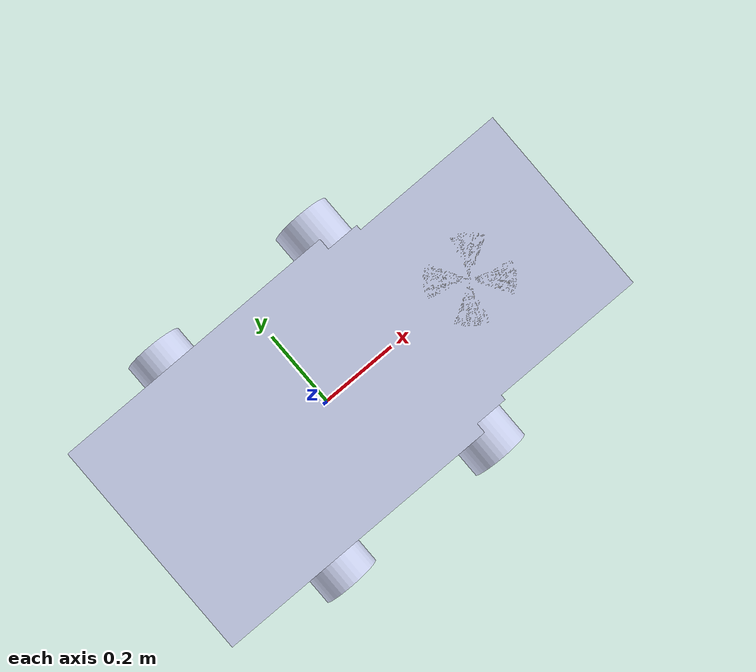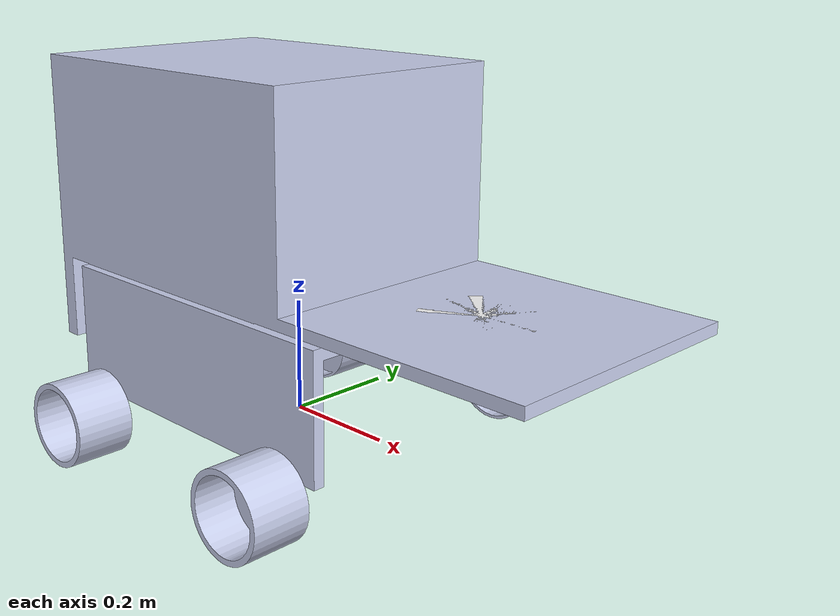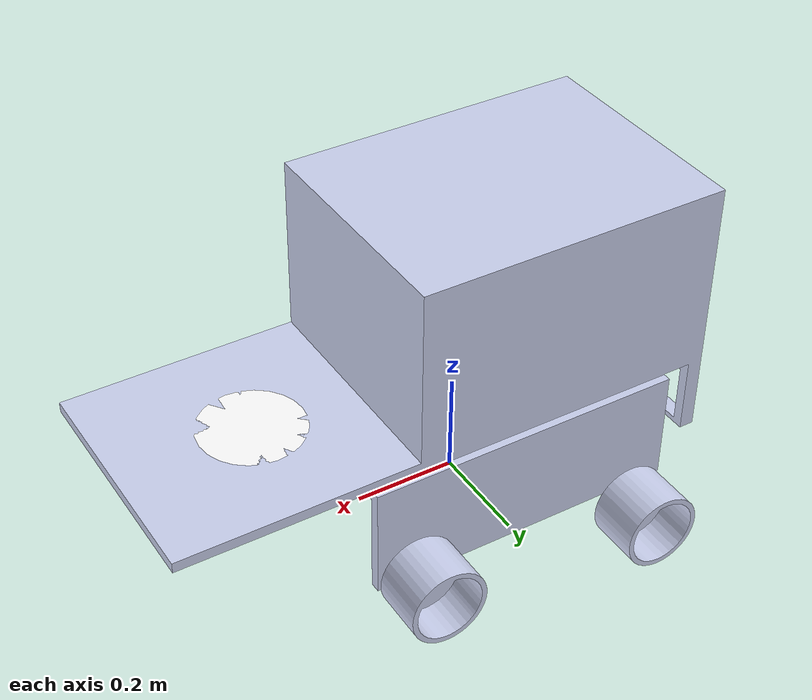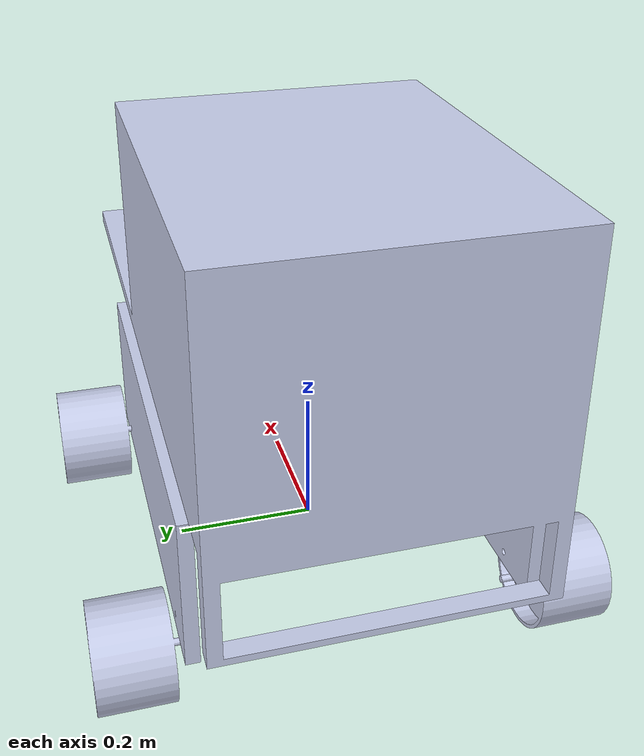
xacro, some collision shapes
<?xml version="1.0"?>
<robot xmlns:xacro="http://www.ros.org/wiki/xacro"  name="robot">

    <xacro:arg name="use_ros2_control" default="true"/>
    <xacro:arg name="sim_mode" default="false"/>

    <xacro:include filename="robot_core.xacro" />

        <xacro:include filename="gazebo_control.xacro" />
    <xacro:include filename="lidar.xacro" />

</robot>

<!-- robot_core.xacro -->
<robot xmlns:xacro="http://www.ros.org/wiki/xacro" >

<link name="base_footprint"/>
  <link

    name="chassis">
    <inertial>
      <origin
        xyz="-0.063114 -1.1102E-16 0.15305"
        rpy="0 0 0" />
      <mass
        value="45" />
      <inertia
        ixx="3.5878"
        ixy="7.9503E-16"
        ixz="0.33119"
        iyy="5.9693"
        iyz="-2.1444E-16"
        izz="6.898" />
    </inertial>
    <visual>
      <origin
        xyz="0 0 0"
        rpy="0 0 0" />
      <geometry>
        <mesh
          filename="file://$(find articubot_one)/meshes/chassis.STL" />
      </geometry>
      <material
        name="">
        <color
          rgba="0.79216 0.81961 0.93333 1" />
      </material>
    </visual>
<collision name="chassis_collision">
  <geometry>
    <box size="0.3 0.3 0.15"/>
  </geometry>
</collision>
  </link>
  <!-- IMU Link -->
      <link name="imu_link">

      </link>

      <!-- IMU Joint (fixed to chassis) -->
      <joint name="imu_joint" type="fixed">
        <parent link="chassis"/>
        <child link="imu_link"/>
        <origin xyz="0 0 0.1" rpy="0 0 0"/>
      </joint>
  <link
    name="wheel1">
    <inertial>
      <origin
        xyz="2.2204E-16 0 -0.020599"
        rpy="0 0 0" />
      <mass
        value="1" />
      <inertia
        ixx="0.0015346"
        ixy="-2.7105E-20"
        ixz="1.233E-19"
        iyy="0.0015346"
        iyz="2.1433E-19"
        izz="0.0021859" />
    </inertial>
    <visual>
      <origin
        xyz="0 0 0"
        rpy="0 0 0" />
      <geometry>
        <mesh
    filename="file://$(find articubot_one)/meshes/wheel1.STL" />
      </geometry>
      <material
        name="">
        <color
          rgba="0.79216 0.81961 0.93333 1" />
      </material>
    </visual>
<collision name="wheel1_collision">
  <geometry>
    <cylinder radius="0.1" length="0.05"/>
  </geometry>
</collision>
  </link>

  <joint name="base_footprint_to_chassis" type="fixed">
  <parent link="base_footprint"/>
  <child link="chassis"/>
  <origin xyz="0 0 0.25" rpy="0 0 0"/>
</joint>

  <joint
    name="wheel1_joint"
    type="continuous">
    <origin
      xyz="0.23 -0.285 -0.25"
      rpy="-1.5708 0 0" />
    <parent
      link="chassis" />
    <child
      link="wheel1" />
    <axis
      xyz="0 0 1" />
    <limit effort="1000.0" velocity="20.0" />
    <dynamics
      damping="0.2"
      friction="0.25" />
  </joint>
  <link
    name="wheel2">
    <inertial>
      <origin
        xyz="0 0 -0.020599"
        rpy="0 0 0" />
      <mass
        value="1" />
      <inertia
        ixx="0.0015346"
        ixy="-5.421E-19"
        ixz="-8.1481E-21"
        iyy="0.0015346"
        iyz="-2.2326E-19"
        izz="0.0021859" />
    </inertial>
    <visual>
      <origin
        xyz="0 0 0"
        rpy="0 0 0" />
      <geometry>
        <mesh
          filename="file://$(find articubot_one)/meshes/wheel2.STL" />
      </geometry>
      <material
        name="">
        <color
          rgba="0.79216 0.81961 0.93333 1" />
      </material>
    </visual>
    <collision name="wheel2_collision">
  <geometry>
    <cylinder radius="0.1" length="0.05"/>
  </geometry>
</collision>
  </link>
  <joint
    name="wheel2_joint"
    type="continuous">
    <origin
      xyz="-0.23 -0.285 -0.25"
      rpy="-1.5708 0 0" />
    <parent
      link="chassis" />
    <child
      link="wheel2" />
    <axis
      xyz="0 0 1" />
    <limit effort="1000.0" velocity="20.0" />
  </joint>
  <link
    name="wheel3">
    <inertial>
      <origin
        xyz="-2.2204E-16 -2.2204E-16 0.020599"
        rpy="0 0 0" />
      <mass
        value="1" />
      <inertia
        ixx="0.0015346"
        ixy="4.4723E-19"
        ixz="-9.1607E-20"
        iyy="0.0015346"
        iyz="1.9984E-20"
        izz="0.0021859" />
    </inertial>
    <visual>
      <origin
        xyz="0 0 0"
        rpy="0 0 0" />
      <geometry>
        <mesh
          filename="file://$(find articubot_one)/meshes/wheel3.STL" />
      </geometry>
      <material
        name="">
        <color
          rgba="0.79216 0.81961 0.93333 1" />
      </material>
    </visual>
  <collision name="wheel3_collision">
  <geometry>
    <cylinder radius="0.1" length="0.05"/>
  </geometry>
</collision>
  </link>
<joint
    name="wheel3_joint"
    type="continuous">
    <origin
      xyz="0.23 0.285 -0.2"
      rpy="-1.5708 0 0" />
    <parent
      link="chassis" />
    <child
      link="wheel3" />
    <axis
      xyz="0 0 -1" />

  </joint>

  <link
    name="wheel4">
    <inertial>
      <origin
        xyz="-2.2204E-16 -2.2204E-16 0.020599"
        rpy="0 0 0" />
      <mass
        value="1" />
      <inertia
        ixx="0.0015346"
        ixy="8.1315E-20"
        ixz="9.4691E-20"
        iyy="0.0015346"
        iyz="-1.1469E-19"
        izz="0.0021859" />
    </inertial>
    <visual>
      <origin
        xyz="0 0 0"
        rpy="0 0 0" />
      <geometry>
        <mesh
          filename="file://$(find articubot_one)/meshes/wheel4.STL" />
      </geometry>
      <material
        name="">
        <color
          rgba="0.79216 0.81961 0.93333 1" />
      </material>
    </visual>
   <collision name="wheel4_collision">
  <geometry>
    <cylinder radius="0.1" length="0.05"/>
  </geometry>
</collision>
  </link>
  <joint
    name="wheel4_joint"
    type="continuous">
    <origin
      xyz="-0.23 0.285 -0.25"
      rpy="-1.5708 0 0" />
    <parent
      link="chassis" />
    <child
      link="wheel4" />
    <axis
      xyz="0 0 -1" />
   <limit effort="1000.0" velocity="20.0" />
  </joint>
  <link
    name="laser_frame">
    <inertial>
      <origin
        xyz="0 0 0"
        rpy="0 0 0" />
      <mass
        value="0.8" />
      <inertia
        ixx="0"
        ixy="0"
        ixz="0"
        iyy="0"
        iyz="0"
        izz="0" />
    </inertial>
    <visual>
      <origin
        xyz="0 0 0"
        rpy="0 0 0" />
      <geometry>
        <mesh
          filename="file://$(find articubot_one)/meshes/lidar.STL" />
      </geometry>
      <material
        name="">
        <color
          rgba="1 1 1 1" />
      </material>
    </visual>
  <collision name="laser_frame_collision">
  <geometry>
    <cylinder radius="0.1" length="0.05"/>
  </geometry>
</collision>
  </link>
  <joint
    name="lidar_joint"
    type="fixed">
    <origin
      xyz="0.41158 0 -0.004"
      rpy="0 0 0" />
    <parent
      link="chassis" />
    <child
      link="laser_frame" />
    <axis
      xyz="0 0 0" />
  </joint>

</robot>
